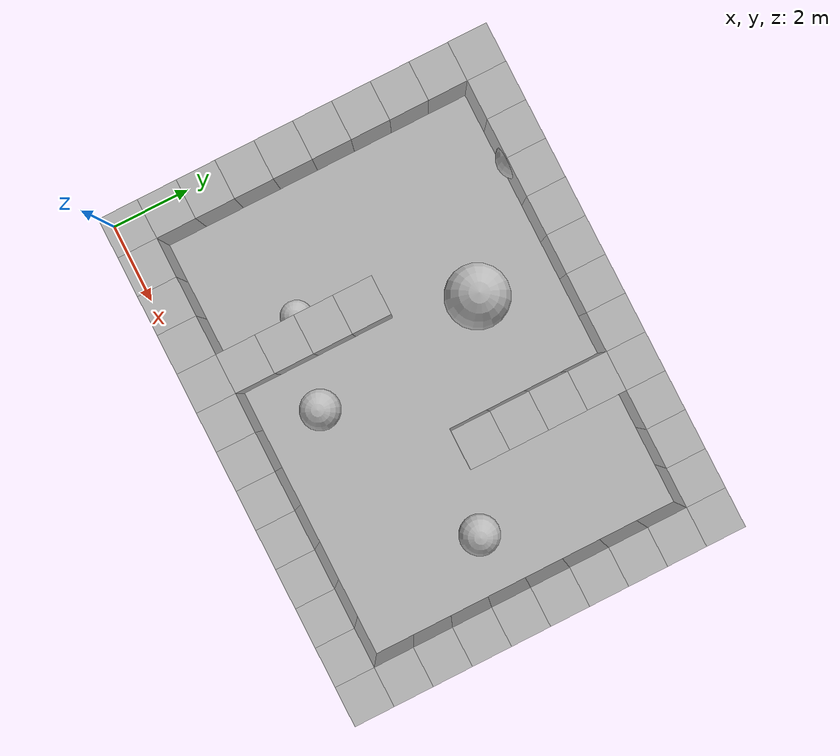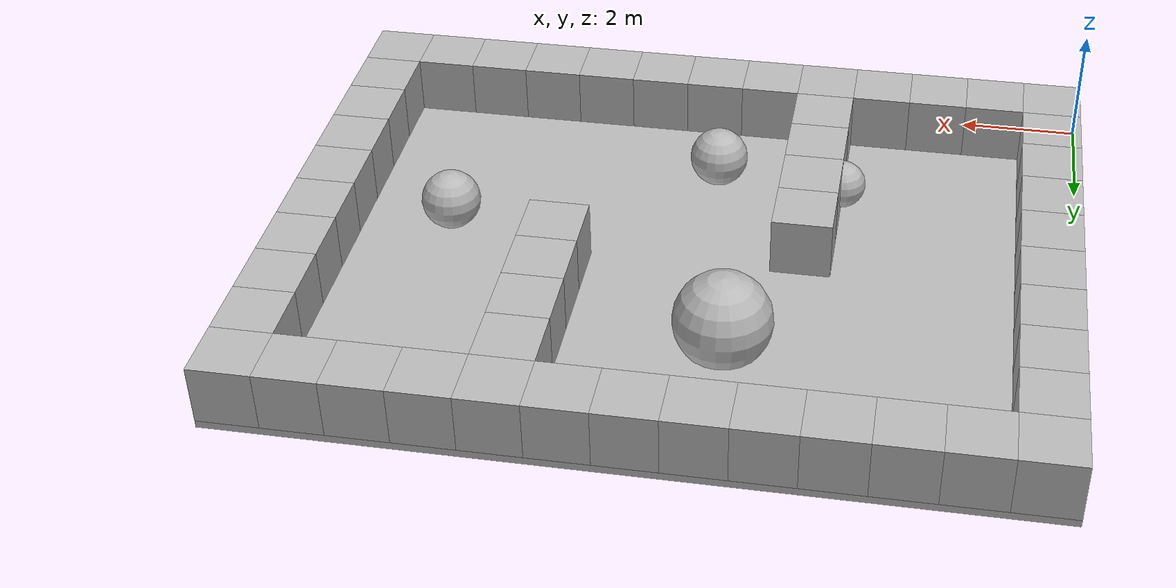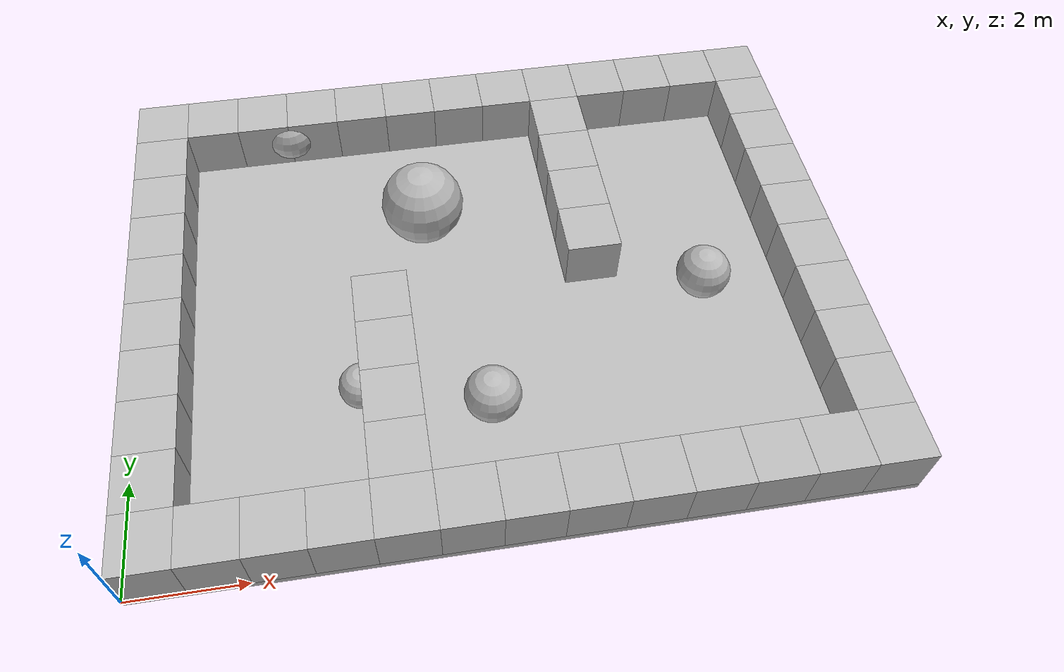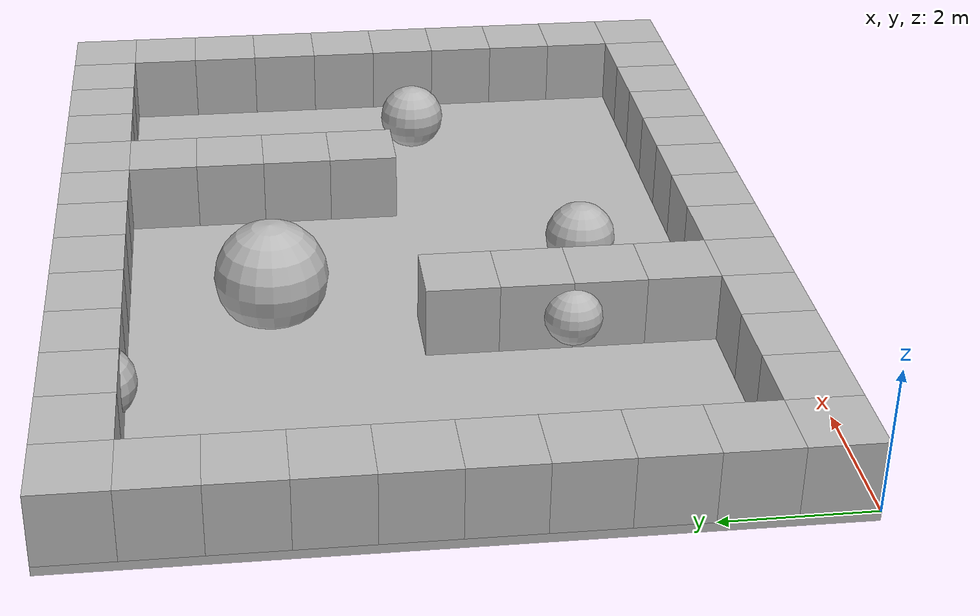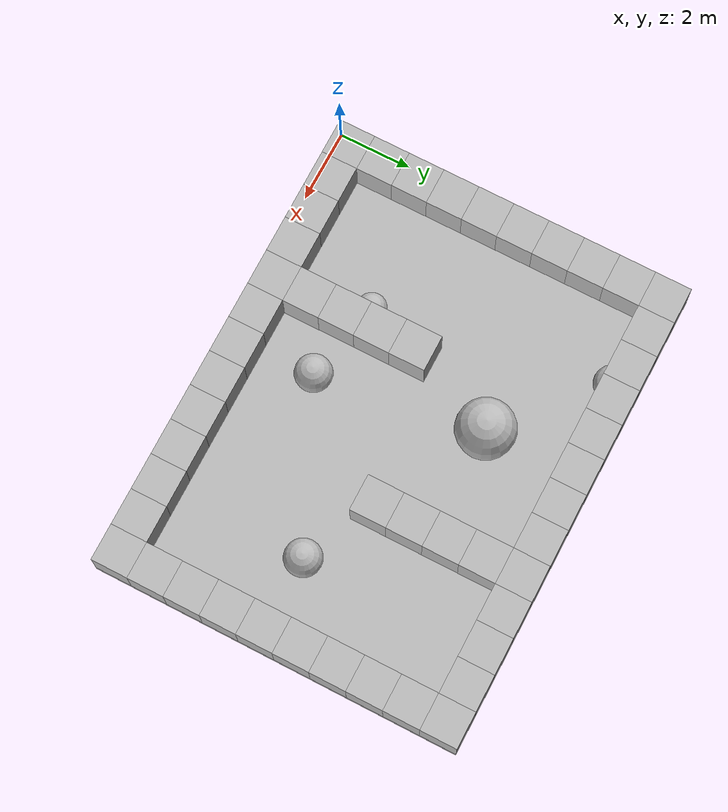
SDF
<sdf version="1.4">
  <world name="default">
    <light name="sun" type="directional">
      <cast_shadows>1</cast_shadows>
      <diffuse>0.8 0.8 0.8 1</diffuse>
      <specular>0.1 0.1 0.1 1</specular>
      <attenuation>
        <range>1000</range>
        <constant>0.9</constant>
        <linear>0.01</linear>
        <quadratic>0.001</quadratic>
      </attenuation>
      <direction>-0.5 0.5 -1</direction>
    </light>
    <model name="floor">
      <pose>6.5 5.0 -0.0625 0 0 0</pose>
      <static>true</static>
      <link name="link">
        <collision name="collision">
          <geometry>
            <box>
              <size>13.0 10.0 0.125</size>
            </box>
          </geometry>
        </collision>
        <visual name="visual">
          <geometry>
            <box>
              <size>13.0 10.0 0.125</size>
            </box>
          </geometry>
        </visual>
      </link>
    </model>
    <model name="box_0_0">
      <pose>0.5 0.5 0.5 0 0 0</pose>
      <static>true</static>
      <link name="link">
        <collision name="collision">
          <geometry>
            <box>
              <size>1.0 1.0 1.0</size>
            </box>
          </geometry>
        </collision>
        <visual name="visual">
          <geometry>
            <box>
              <size>1.0 1.0 1.0</size>
            </box>
          </geometry>
        </visual>
      </link>
    </model>

    <model name="landmark1">
      <pose>4 3.0 0.5 0 0 0</pose>
      <static>true</static>
      <link name="link">
        <collision name="collision">
          <geometry>
            <sphere>
              <radius>0.4</radius>
            </sphere>
          </geometry>
        </collision>
        <visual name="visual">
          <geometry>
            <sphere>
              <radius>0.4</radius>
            </sphere>
          </geometry>
        </visual>
      </link>
    </model>

    <model name="box_0_1">
      <pose>0.5 1.5 0.5 0 0 0</pose>
      <static>true</static>
      <link name="link">
        <collision name="collision">
          <geometry>
            <box>
              <size>1.0 1.0 1.0</size>
            </box>
          </geometry>
        </collision>
        <visual name="visual">
          <geometry>
            <box>
              <size>1.0 1.0 1.0</size>
            </box>
          </geometry>
        </visual>
      </link>
    </model>
    <model name="box_0_2">
      <pose>0.5 2.5 0.5 0 0 0</pose>
      <static>true</static>
      <link name="link">
        <collision name="collision">
          <geometry>
            <box>
              <size>1.0 1.0 1.0</size>
            </box>
          </geometry>
        </collision>
        <visual name="visual">
          <geometry>
            <box>
              <size>1.0 1.0 1.0</size>
            </box>
          </geometry>
        </visual>
      </link>
    </model>
    <model name="box_0_3">
      <pose>0.5 3.5 0.5 0 0 0</pose>
      <static>true</static>
      <link name="link">
        <collision name="collision">
          <geometry>
            <box>
              <size>1.0 1.0 1.0</size>
            </box>
          </geometry>
        </collision>
        <visual name="visual">
          <geometry>
            <box>
              <size>1.0 1.0 1.0</size>
            </box>
          </geometry>
        </visual>
      </link>
    </model>
    <model name="box_0_4">
      <pose>0.5 4.5 0.5 0 0 0</pose>
      <static>true</static>
      <link name="link">
        <collision name="collision">
          <geometry>
            <box>
              <size>1.0 1.0 1.0</size>
            </box>
          </geometry>
        </collision>
        <visual name="visual">
          <geometry>
            <box>
              <size>1.0 1.0 1.0</size>
            </box>
          </geometry>
        </visual>
      </link>
    </model>
    <model name="box_0_5">
      <pose>0.5 5.5 0.5 0 0 0</pose>
      <static>true</static>
      <link name="link">
        <collision name="collision">
          <geometry>
            <box>
              <size>1.0 1.0 1.0</size>
            </box>
          </geometry>
        </collision>
        <visual name="visual">
          <geometry>
            <box>
              <size>1.0 1.0 1.0</size>
            </box>
          </geometry>
        </visual>
      </link>
    </model>
    <model name="box_0_6">
      <pose>0.5 6.5 0.5 0 0 0</pose>
      <static>true</static>
      <link name="link">
        <collision name="collision">
          <geometry>
            <box>
              <size>1.0 1.0 1.0</size>
            </box>
          </geometry>
        </collision>
        <visual name="visual">
          <geometry>
            <box>
              <size>1.0 1.0 1.0</size>
            </box>
          </geometry>
        </visual>
      </link>
    </model>
    <model name="box_0_7">
      <pose>0.5 7.5 0.5 0 0 0</pose>
      <static>true</static>
      <link name="link">
        <collision name="collision">
          <geometry>
            <box>
              <size>1.0 1.0 1.0</size>
            </box>
          </geometry>
        </collision>
        <visual name="visual">
          <geometry>
            <box>
              <size>1.0 1.0 1.0</size>
            </box>
          </geometry>
        </visual>
      </link>
    </model>
    <model name="box_0_8">
      <pose>0.5 8.5 0.5 0 0 0</pose>
      <static>true</static>
      <link name="link">
        <collision name="collision">
          <geometry>
            <box>
              <size>1.0 1.0 1.0</size>
            </box>
          </geometry>
        </collision>
        <visual name="visual">
          <geometry>
            <box>
              <size>1.0 1.0 1.0</size>
            </box>
          </geometry>
        </visual>
      </link>
    </model>
    <model name="box_0_9">
      <pose>0.5 9.5 0.5 0 0 0</pose>
      <static>true</static>
      <link name="link">
        <collision name="collision">
          <geometry>
            <box>
              <size>1.0 1.0 1.0</size>
            </box>
          </geometry>
        </collision>
        <visual name="visual">
          <geometry>
            <box>
              <size>1.0 1.0 1.0</size>
            </box>
          </geometry>
        </visual>
      </link>
    </model>

    <model name="landmark2">
      <pose>3 9.3 0.5 0 0 0</pose>
      <static>true</static>
      <link name="link">
        <collision name="collision">
          <geometry>
            <sphere>
              <radius>0.3s</radius>
            </sphere>
          </geometry>
        </collision>
        <visual name="visual">
          <geometry>
            <sphere>
              <radius>0.5</radius>
            </sphere>
          </geometry>
        </visual>
      </link>
    </model>

    <model name="landmark3">
      <pose>5.5 7 0.5 0 0 0</pose>
      <static>true</static>
      <link name="link">
        <collision name="collision">
          <geometry>
            <sphere>
              <radius>0.7</radius>
            </sphere>
          </geometry>
        </collision>
        <visual name="visual">
          <geometry>
            <sphere>
              <radius>0.8</radius>
            </sphere>
          </geometry>
        </visual>
      </link>
    </model>

    <model name="landmark4">
      <pose>6.2 2.5 0.5 0 0 0</pose>
      <static>true</static>
      <link name="link">
        <collision name="collision">
          <geometry>
            <sphere>
              <radius>0.4</radius>
            </sphere>
          </geometry>
        </collision>
        <visual name="visual">
          <geometry>
            <sphere>
              <radius>0.5</radius>
            </sphere>
          </geometry>
        </visual>
      </link>
    </model>

    <model name="landmark5">
      <pose>10.5 4.5 0.5 0 0 0</pose>
      <static>true</static>
      <link name="link">
        <collision name="collision">
          <geometry>
            <sphere>
              <radius>0.4</radius>
            </sphere>
          </geometry>
        </collision>
        <visual name="visual">
          <geometry>
            <sphere>
              <radius>0.5</radius>
            </sphere>
          </geometry>
        </visual>
      </link>
    </model>

    <model name="box_1_0">
      <pose>1.5 0.5 0.5 0 0 0</pose>
      <static>true</static>
      <link name="link">
        <collision name="collision">
          <geometry>
            <box>
              <size>1.0 1.0 1.0</size>
            </box>
          </geometry>
        </collision>
        <visual name="visual">
          <geometry>
            <box>
              <size>1.0 1.0 1.0</size>
            </box>
          </geometry>
        </visual>
      </link>
    </model>
    <model name="box_1_9">
      <pose>1.5 9.5 0.5 0 0 0</pose>
      <static>true</static>
      <link name="link">
        <collision name="collision">
          <geometry>
            <box>
              <size>1.0 1.0 1.0</size>
            </box>
          </geometry>
        </collision>
        <visual name="visual">
          <geometry>
            <box>
              <size>1.0 1.0 1.0</size>
            </box>
          </geometry>
        </visual>
      </link>
    </model>
    <model name="box_2_0">
      <pose>2.5 0.5 0.5 0 0 0</pose>
      <static>true</static>
      <link name="link">
        <collision name="collision">
          <geometry>
            <box>
              <size>1.0 1.0 1.0</size>
            </box>
          </geometry>
        </collision>
        <visual name="visual">
          <geometry>
            <box>
              <size>1.0 1.0 1.0</size>
            </box>
          </geometry>
        </visual>
      </link>
    </model>
    <model name="box_2_9">
      <pose>2.5 9.5 0.5 0 0 0</pose>
      <static>true</static>
      <link name="link">
        <collision name="collision">
          <geometry>
            <box>
              <size>1.0 1.0 1.0</size>
            </box>
          </geometry>
        </collision>
        <visual name="visual">
          <geometry>
            <box>
              <size>1.0 1.0 1.0</size>
            </box>
          </geometry>
        </visual>
      </link>
    </model>
    <model name="box_3_0">
      <pose>3.5 0.5 0.5 0 0 0</pose>
      <static>true</static>
      <link name="link">
        <collision name="collision">
          <geometry>
            <box>
              <size>1.0 1.0 1.0</size>
            </box>
          </geometry>
        </collision>
        <visual name="visual">
          <geometry>
            <box>
              <size>1.0 1.0 1.0</size>
            </box>
          </geometry>
        </visual>
      </link>
    </model>
    <model name="box_3_9">
      <pose>3.5 9.5 0.5 0 0 0</pose>
      <static>true</static>
      <link name="link">
        <collision name="collision">
          <geometry>
            <box>
              <size>1.0 1.0 1.0</size>
            </box>
          </geometry>
        </collision>
        <visual name="visual">
          <geometry>
            <box>
              <size>1.0 1.0 1.0</size>
            </box>
          </geometry>
        </visual>
      </link>
    </model>
    <model name="box_4_0">
      <pose>4.5 0.5 0.5 0 0 0</pose>
      <static>true</static>
      <link name="link">
        <collision name="collision">
          <geometry>
            <box>
              <size>1.0 1.0 1.0</size>
            </box>
          </geometry>
        </collision>
        <visual name="visual">
          <geometry>
            <box>
              <size>1.0 1.0 1.0</size>
            </box>
          </geometry>
        </visual>
      </link>
    </model>
    <model name="box_4_1">
      <pose>4.5 1.5 0.5 0 0 0</pose>
      <static>true</static>
      <link name="link">
        <collision name="collision">
          <geometry>
            <box>
              <size>1.0 1.0 1.0</size>
            </box>
          </geometry>
        </collision>
        <visual name="visual">
          <geometry>
            <box>
              <size>1.0 1.0 1.0</size>
            </box>
          </geometry>
        </visual>
      </link>
    </model>
    <model name="box_4_2">
      <pose>4.5 2.5 0.5 0 0 0</pose>
      <static>true</static>
      <link name="link">
        <collision name="collision">
          <geometry>
            <box>
              <size>1.0 1.0 1.0</size>
            </box>
          </geometry>
        </collision>
        <visual name="visual">
          <geometry>
            <box>
              <size>1.0 1.0 1.0</size>
            </box>
          </geometry>
        </visual>
      </link>
    </model>
    <model name="box_4_3">
      <pose>4.5 3.5 0.5 0 0 0</pose>
      <static>true</static>
      <link name="link">
        <collision name="collision">
          <geometry>
            <box>
              <size>1.0 1.0 1.0</size>
            </box>
          </geometry>
        </collision>
        <visual name="visual">
          <geometry>
            <box>
              <size>1.0 1.0 1.0</size>
            </box>
          </geometry>
        </visual>
      </link>
    </model>
    <model name="box_4_4">
      <pose>4.5 4.5 0.5 0 0 0</pose>
      <static>true</static>
      <link name="link">
        <collision name="collision">
          <geometry>
            <box>
              <size>1.0 1.0 1.0</size>
            </box>
          </geometry>
        </collision>
        <visual name="visual">
          <geometry>
            <box>
              <size>1.0 1.0 1.0</size>
            </box>
          </geometry>
        </visual>
      </link>
    </model>
    <model name="box_4_9">
      <pose>4.5 9.5 0.5 0 0 0</pose>
      <static>true</static>
      <link name="link">
        <collision name="collision">
          <geometry>
            <box>
              <size>1.0 1.0 1.0</size>
            </box>
          </geometry>
        </collision>
        <visual name="visual">
          <geometry>
            <box>
              <size>1.0 1.0 1.0</size>
            </box>
          </geometry>
        </visual>
      </link>
    </model>
    <model name="box_5_0">
      <pose>5.5 0.5 0.5 0 0 0</pose>
      <static>true</static>
      <link name="link">
        <collision name="collision">
          <geometry>
            <box>
              <size>1.0 1.0 1.0</size>
            </box>
          </geometry>
        </collision>
        <visual name="visual">
          <geometry>
            <box>
              <size>1.0 1.0 1.0</size>
            </box>
          </geometry>
        </visual>
      </link>
    </model>
    <model name="box_5_9">
      <pose>5.5 9.5 0.5 0 0 0</pose>
      <static>true</static>
      <link name="link">
        <collision name="collision">
          <geometry>
            <box>
              <size>1.0 1.0 1.0</size>
            </box>
          </geometry>
        </collision>
        <visual name="visual">
          <geometry>
            <box>
              <size>1.0 1.0 1.0</size>
            </box>
          </geometry>
        </visual>
      </link>
    </model>
    <model name="box_6_0">
      <pose>6.5 0.5 0.5 0 0 0</pose>
      <static>true</static>
      <link name="link">
        <collision name="collision">
          <geometry>
            <box>
              <size>1.0 1.0 1.0</size>
            </box>
          </geometry>
        </collision>
        <visual name="visual">
          <geometry>
            <box>
              <size>1.0 1.0 1.0</size>
            </box>
          </geometry>
        </visual>
      </link>
    </model>
    <model name="box_6_9">
      <pose>6.5 9.5 0.5 0 0 0</pose>
      <static>true</static>
      <link name="link">
        <collision name="collision">
          <geometry>
            <box>
              <size>1.0 1.0 1.0</size>
            </box>
          </geometry>
        </collision>
        <visual name="visual">
          <geometry>
            <box>
              <size>1.0 1.0 1.0</size>
            </box>
          </geometry>
        </visual>
      </link>
    </model>
    <model name="box_7_0">
      <pose>7.5 0.5 0.5 0 0 0</pose>
      <static>true</static>
      <link name="link">
        <collision name="collision">
          <geometry>
            <box>
              <size>1.0 1.0 1.0</size>
            </box>
          </geometry>
        </collision>
        <visual name="visual">
          <geometry>
            <box>
              <size>1.0 1.0 1.0</size>
            </box>
          </geometry>
        </visual>
      </link>
    </model>
    <model name="box_7_9">
      <pose>7.5 9.5 0.5 0 0 0</pose>
      <static>true</static>
      <link name="link">
        <collision name="collision">
          <geometry>
            <box>
              <size>1.0 1.0 1.0</size>
            </box>
          </geometry>
        </collision>
        <visual name="visual">
          <geometry>
            <box>
              <size>1.0 1.0 1.0</size>
            </box>
          </geometry>
        </visual>
      </link>
    </model>
    <model name="box_8_0">
      <pose>8.5 0.5 0.5 0 0 0</pose>
      <static>true</static>
      <link name="link">
        <collision name="collision">
          <geometry>
            <box>
              <size>1.0 1.0 1.0</size>
            </box>
          </geometry>
        </collision>
        <visual name="visual">
          <geometry>
            <box>
              <size>1.0 1.0 1.0</size>
            </box>
          </geometry>
        </visual>
      </link>
    </model>
    <model name="box_8_5">
      <pose>8.5 5.5 0.5 0 0 0</pose>
      <static>true</static>
      <link name="link">
        <collision name="collision">
          <geometry>
            <box>
              <size>1.0 1.0 1.0</size>
            </box>
          </geometry>
        </collision>
        <visual name="visual">
          <geometry>
            <box>
              <size>1.0 1.0 1.0</size>
            </box>
          </geometry>
        </visual>
      </link>
    </model>
    <model name="box_8_6">
      <pose>8.5 6.5 0.5 0 0 0</pose>
      <static>true</static>
      <link name="link">
        <collision name="collision">
          <geometry>
            <box>
              <size>1.0 1.0 1.0</size>
            </box>
          </geometry>
        </collision>
        <visual name="visual">
          <geometry>
            <box>
              <size>1.0 1.0 1.0</size>
            </box>
          </geometry>
        </visual>
      </link>
    </model>
    <model name="box_8_7">
      <pose>8.5 7.5 0.5 0 0 0</pose>
      <static>true</static>
      <link name="link">
        <collision name="collision">
          <geometry>
            <box>
              <size>1.0 1.0 1.0</size>
            </box>
          </geometry>
        </collision>
        <visual name="visual">
          <geometry>
            <box>
              <size>1.0 1.0 1.0</size>
            </box>
          </geometry>
        </visual>
      </link>
    </model>
    <model name="box_8_8">
      <pose>8.5 8.5 0.5 0 0 0</pose>
      <static>true</static>
      <link name="link">
        <collision name="collision">
          <geometry>
            <box>
              <size>1.0 1.0 1.0</size>
            </box>
          </geometry>
        </collision>
        <visual name="visual">
          <geometry>
            <box>
              <size>1.0 1.0 1.0</size>
            </box>
          </geometry>
        </visual>
      </link>
    </model>
    <model name="box_8_9">
      <pose>8.5 9.5 0.5 0 0 0</pose>
      <static>true</static>
      <link name="link">
        <collision name="collision">
          <geometry>
            <box>
              <size>1.0 1.0 1.0</size>
            </box>
          </geometry>
        </collision>
        <visual name="visual">
          <geometry>
            <box>
              <size>1.0 1.0 1.0</size>
            </box>
          </geometry>
        </visual>
      </link>
    </model>
    <model name="box_9_0">
      <pose>9.5 0.5 0.5 0 0 0</pose>
      <static>true</static>
      <link name="link">
        <collision name="collision">
          <geometry>
            <box>
              <size>1.0 1.0 1.0</size>
            </box>
          </geometry>
        </collision>
        <visual name="visual">
          <geometry>
            <box>
              <size>1.0 1.0 1.0</size>
            </box>
          </geometry>
        </visual>
      </link>
    </model>
    <model name="box_9_9">
      <pose>9.5 9.5 0.5 0 0 0</pose>
      <static>true</static>
      <link name="link">
        <collision name="collision">
          <geometry>
            <box>
              <size>1.0 1.0 1.0</size>
            </box>
          </geometry>
        </collision>
        <visual name="visual">
          <geometry>
            <box>
              <size>1.0 1.0 1.0</size>
            </box>
          </geometry>
        </visual>
      </link>
    </model>
    <model name="box_10_0">
      <pose>10.5 0.5 0.5 0 0 0</pose>
      <static>true</static>
      <link name="link">
        <collision name="collision">
          <geometry>
            <box>
              <size>1.0 1.0 1.0</size>
            </box>
          </geometry>
        </collision>
        <visual name="visual">
          <geometry>
            <box>
              <size>1.0 1.0 1.0</size>
            </box>
          </geometry>
        </visual>
      </link>
    </model>
    <model name="box_10_9">
      <pose>10.5 9.5 0.5 0 0 0</pose>
      <static>true</static>
      <link name="link">
        <collision name="collision">
          <geometry>
            <box>
              <size>1.0 1.0 1.0</size>
            </box>
          </geometry>
        </collision>
        <visual name="visual">
          <geometry>
            <box>
              <size>1.0 1.0 1.0</size>
            </box>
          </geometry>
        </visual>
      </link>
    </model>
    <model name="box_11_0">
      <pose>11.5 0.5 0.5 0 0 0</pose>
      <static>true</static>
      <link name="link">
        <collision name="collision">
          <geometry>
            <box>
              <size>1.0 1.0 1.0</size>
            </box>
          </geometry>
        </collision>
        <visual name="visual">
          <geometry>
            <box>
              <size>1.0 1.0 1.0</size>
            </box>
          </geometry>
        </visual>
      </link>
    </model>
    <model name="box_11_9">
      <pose>11.5 9.5 0.5 0 0 0</pose>
      <static>true</static>
      <link name="link">
        <collision name="collision">
          <geometry>
            <box>
              <size>1.0 1.0 1.0</size>
            </box>
          </geometry>
        </collision>
        <visual name="visual">
          <geometry>
            <box>
              <size>1.0 1.0 1.0</size>
            </box>
          </geometry>
        </visual>
      </link>
    </model>
    <model name="box_12_0">
      <pose>12.5 0.5 0.5 0 0 0</pose>
      <static>true</static>
      <link name="link">
        <collision name="collision">
          <geometry>
            <box>
              <size>1.0 1.0 1.0</size>
            </box>
          </geometry>
        </collision>
        <visual name="visual">
          <geometry>
            <box>
              <size>1.0 1.0 1.0</size>
            </box>
          </geometry>
        </visual>
      </link>
    </model>
    <model name="box_12_1">
      <pose>12.5 1.5 0.5 0 0 0</pose>
      <static>true</static>
      <link name="link">
        <collision name="collision">
          <geometry>
            <box>
              <size>1.0 1.0 1.0</size>
            </box>
          </geometry>
        </collision>
        <visual name="visual">
          <geometry>
            <box>
              <size>1.0 1.0 1.0</size>
            </box>
          </geometry>
        </visual>
      </link>
    </model>
    <model name="box_12_2">
      <pose>12.5 2.5 0.5 0 0 0</pose>
      <static>true</static>
      <link name="link">
        <collision name="collision">
          <geometry>
            <box>
              <size>1.0 1.0 1.0</size>
            </box>
          </geometry>
        </collision>
        <visual name="visual">
          <geometry>
            <box>
              <size>1.0 1.0 1.0</size>
            </box>
          </geometry>
        </visual>
      </link>
    </model>
    <model name="box_12_3">
      <pose>12.5 3.5 0.5 0 0 0</pose>
      <static>true</static>
      <link name="link">
        <collision name="collision">
          <geometry>
            <box>
              <size>1.0 1.0 1.0</size>
            </box>
          </geometry>
        </collision>
        <visual name="visual">
          <geometry>
            <box>
              <size>1.0 1.0 1.0</size>
            </box>
          </geometry>
        </visual>
      </link>
    </model>
    <model name="box_12_4">
      <pose>12.5 4.5 0.5 0 0 0</pose>
      <static>true</static>
      <link name="link">
        <collision name="collision">
          <geometry>
            <box>
              <size>1.0 1.0 1.0</size>
            </box>
          </geometry>
        </collision>
        <visual name="visual">
          <geometry>
            <box>
              <size>1.0 1.0 1.0</size>
            </box>
          </geometry>
        </visual>
      </link>
    </model>
    <model name="box_12_5">
      <pose>12.5 5.5 0.5 0 0 0</pose>
      <static>true</static>
      <link name="link">
        <collision name="collision">
          <geometry>
            <box>
              <size>1.0 1.0 1.0</size>
            </box>
          </geometry>
        </collision>
        <visual name="visual">
          <geometry>
            <box>
              <size>1.0 1.0 1.0</size>
            </box>
          </geometry>
        </visual>
      </link>
    </model>
    <model name="box_12_6">
      <pose>12.5 6.5 0.5 0 0 0</pose>
      <static>true</static>
      <link name="link">
        <collision name="collision">
          <geometry>
            <box>
              <size>1.0 1.0 1.0</size>
            </box>
          </geometry>
        </collision>
        <visual name="visual">
          <geometry>
            <box>
              <size>1.0 1.0 1.0</size>
            </box>
          </geometry>
        </visual>
      </link>
    </model>
    <model name="box_12_7">
      <pose>12.5 7.5 0.5 0 0 0</pose>
      <static>true</static>
      <link name="link">
        <collision name="collision">
          <geometry>
            <box>
              <size>1.0 1.0 1.0</size>
            </box>
          </geometry>
        </collision>
        <visual name="visual">
          <geometry>
            <box>
              <size>1.0 1.0 1.0</size>
            </box>
          </geometry>
        </visual>
      </link>
    </model>
    <model name="box_12_8">
      <pose>12.5 8.5 0.5 0 0 0</pose>
      <static>true</static>
      <link name="link">
        <collision name="collision">
          <geometry>
            <box>
              <size>1.0 1.0 1.0</size>
            </box>
          </geometry>
        </collision>
        <visual name="visual">
          <geometry>
            <box>
              <size>1.0 1.0 1.0</size>
            </box>
          </geometry>
        </visual>
      </link>
    </model>
    <model name="box_12_9">
      <pose>12.5 9.5 0.5 0 0 0</pose>
      <static>true</static>
      <link name="link">
        <collision name="collision">
          <geometry>
            <box>
              <size>1.0 1.0 1.0</size>
            </box>
          </geometry>
        </collision>
        <visual name="visual">
          <geometry>
            <box>
              <size>1.0 1.0 1.0</size>
            </box>
          </geometry>
        </visual>
      </link>
    </model>
  </world>
</sdf>
